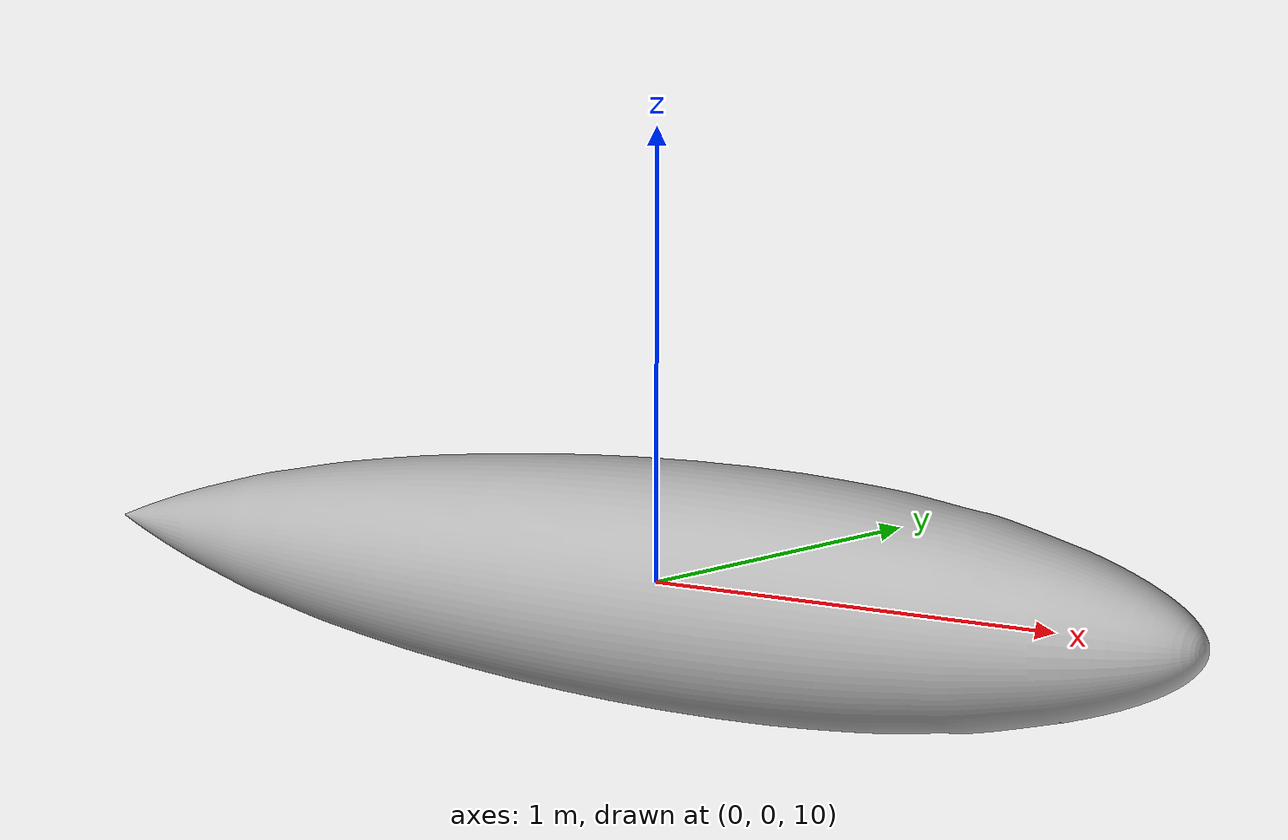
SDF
<?xml version="1.0" ?>
<sdf version="1.6">
  <model name="hull">
    <pose>0 0 10 0 0 0</pose>
    <link name="hull_link">
      <inertial>
        <pose>0.0 0 0 0 0 0</pose>
        <mass>0.5</mass>
        <inertia>
          <ixx>0.0069861272</ixx>
          <ixy>0</ixy>
          <ixz>0</ixz>
          <iyy>0.1292433532</iyy>
          <iyz>0</iyz>
          <izz>0.1292433532</izz>
        </inertia>
        <fluid_added_mass>

          <xx>0.0256621271421697</xx>
          <xy>0.0</xy>
          <xz>0.0</xz>
          <xp>0.0</xp>
          <xq>0.0</xq>
          <xr>0.0</xr>

          <yy>0.538639694339695</yy>
          <yz>0.0</yz>
          <yp>0.0</yp>
          <yq>0.0</yq>
          <yr>0.189291512412098</yr>

          <zz>0.538639694339695</zz>
          <zp>0.0</zp>
          <zq>-0.189291512412098</zq>
          <zr>0.0</zr>

          <pp>0.000160094457776136</pp>
          <pq>0.0</pq>
          <pr>0.0</pr>

          <qq>2.02957381640185</qq>
          <qr>0.0</qr>

          <rr>2.02957381640185</rr>

        </fluid_added_mass>
      </inertial>

        <visual name='hull_visual'>
          <pose> -1.6647160021415952 0 0 0 3.141592653589793 0</pose>
          <geometry>
            <mesh>
              <scale>0.001 0.001 0.001</scale>
              <uri>model://airship/meshes/envelope.stl</uri>
            </mesh>
          </geometry>
        </visual>

        <collision name='hull_collision'>
          <geometry>
            <box>
              <size>10 0.45 0.1</size>
            </box>
          </geometry>
        </collision>
    </link>
    <plugin
      filename="gz-sim-lighter_than_air_dynamics-system"
      name="gz::sim::systems::LighterThanAirDynamics">
      <link_name>hull_link</link_name>
      <air_density>1.2754</air_density>
      <force_inviscid_coeff>-0.06425096870274437</force_inviscid_coeff>
      <force_viscous_coeff>0.07237374316691345</force_viscous_coeff>
      <moment_inviscid_coeff>0.08506449448628849</moment_inviscid_coeff>
      <moment_viscous_coeff>-0.0941254292661463</moment_viscous_coeff>
      <axial_drag_coeff>0.1</axial_drag_coeff>
      <eps_v>2.4389047</eps_v>
    </plugin>

  </model>
</sdf>
